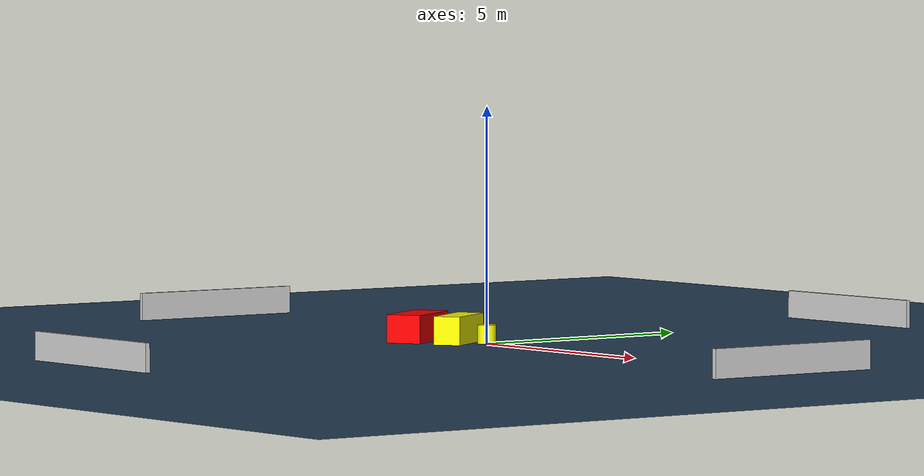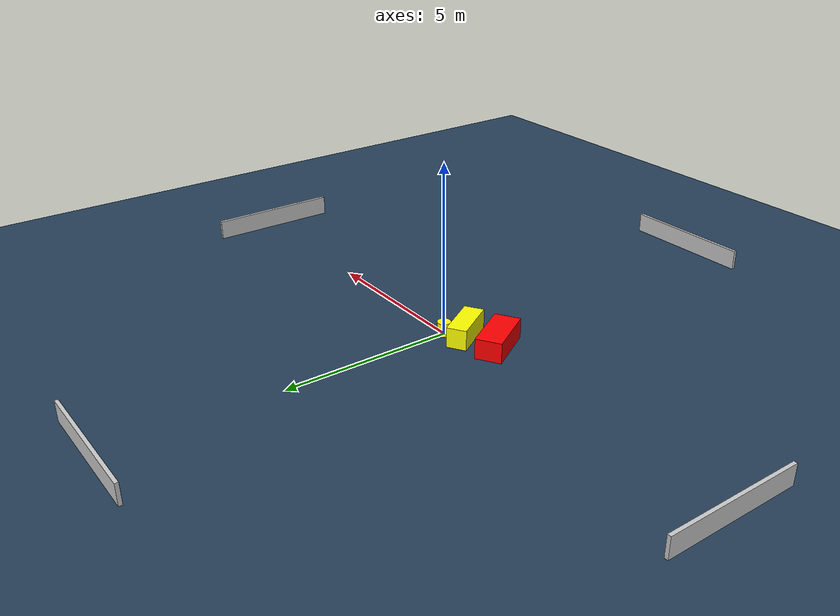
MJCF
<?xml version="1.0" ?>
<mujoco model="generated_environment">
  <option timestep="0.01" integrator="RK4" cone="elliptic"/>
  <default>
    <geom density="1"/>
  </default>
  <asset>
    <texture builtin="gradient" height="3072" name="skybox" rgb1="0.3 0.5 0.7" rgb2="0 0 0" type="skybox" width="512"/>
    <texture builtin="checker" height="300" name="groundplane" rgb1="0.2 0.3 0.4" rgb2="0.1 0.2 0.3" type="2d" width="300"/>
    <material name="groundplane" reflectance="0.2" texrepeat="5 5" texture="groundplane"/>
  </asset>
  <worldbody>
    <light dir="0 0 -1" directional="true" pos="0 0 1.5"/>
    <geom condim="3" friction="0.5 0.005 0.001" material="groundplane" name="floor" pos="0 0 0" size="0 0 0.05" type="plane"/>
    <body name="walls">
      <geom name="wall_1" condim="4" pos="-10.0 0.0 0.3" rgba="0.800000011920929 0.800000011920929 0.800000011920929 1.0" size="0.05 2.0 0.3" type="box"/>
      <geom name="wall_2" condim="4" pos="10.0 0.0 0.3" rgba="0.800000011920929 0.800000011920929 0.800000011920929 1.0" size="0.05 2.0 0.3" type="box"/>
      <geom name="wall_3" condim="4" pos="0.0 -10.0 0.3" rgba="0.800000011920929 0.800000011920929 0.800000011920929 1.0" size="2.0 0.05 0.3" type="box"/>
      <geom name="wall_4" condim="4" pos="0.0 10.0 0.3" rgba="0.800000011920929 0.800000011920929 0.800000011920929 1.0" size="2.0 0.05 0.3" type="box"/>
    </body>
    <body name="robot">
      <joint name="joint_x" type="slide" pos="0 0 0" axis="1 0 0"/>
      <joint name="joint_y" type="slide" pos="0 0 0" axis="0 1 0"/>
      <geom name="robot" type="cylinder" pos="0.0 0.0 0.2" size="0.2 0.2 0.0" mass="5.0" friction="1.0 0.005 0.0001" condim="4" rgba="1.0 1.0 0.0 1.0"/>
    </body>
    <body name="obstacle_1_movable">
      <geom name="obstacle_1_movable" condim="4" pos="-0.5101914844122054 -0.35690011569193864 0.3" euler="0 0 121.65849149166233" friction="0.0 0.005 0.001" rgba="1.0 1.0 0.0 1.0" size="0.7007459063890562 0.2886474491493387 0.3" type="box" mass="0.1"/>
      <joint type="free"/>
    </body>
    <body name="obstacle_2_static">
      <geom name="obstacle_2_static" condim="4" pos="-1.4997635644812306 -0.7088786437281384 0.3" euler="0 0 211.12080864874565" friction="0.0 0.005 0.001" rgba="1.0 0.0 0.0 1.0" size="0.3806865892134327 0.7867419649142375 0.3" type="box"/>
    </body>
  </worldbody>
  <actuator>
    <motor name="actuator_x" joint="joint_x" gear="1" ctrlrange="-1 1"/>
    <motor name="actuator_y" joint="joint_y" gear="1" ctrlrange="-1 1"/>
  </actuator>
</mujoco>
